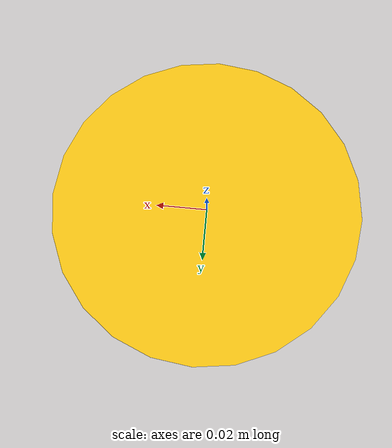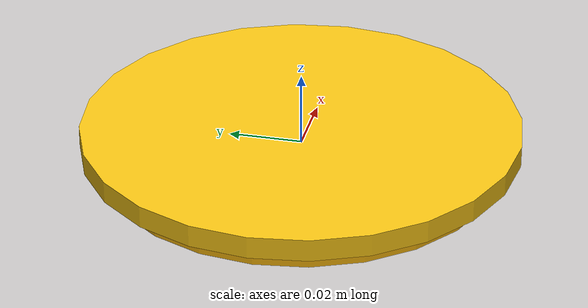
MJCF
<mujoco model="yellow_plate">
  <worldbody>
    <body>
      <body name="object">
        <geom name="plate_collision" type="cylinder" size="0.055 0.005" density="760" friction="0.8 0.02 0.002" rgba="0.95 0.70 0.04 1" group="0"/>
        <geom name="plate_visual" type="cylinder" size="0.055 0.005" rgba="0.95 0.70 0.04 1" contype="0" conaffinity="0" mass="0.0001" group="1"/>
        <geom name="plate_rim_visual" type="cylinder" size="0.060 0.003" pos="0 0 0.003" rgba="0.98 0.78 0.08 1" contype="0" conaffinity="0" mass="0.0001" group="1"/>
      </body>
      <site name="bottom_site" pos="0 0 -0.005" size="0.002" rgba="0 0 0 0"/>
      <site name="top_site" pos="0 0 0.008" size="0.002" rgba="0 0 0 0"/>
      <site name="horizontal_radius_site" pos="0.060 0 0" size="0.002" rgba="0 0 0 0"/>
    </body>
  </worldbody>
</mujoco>
